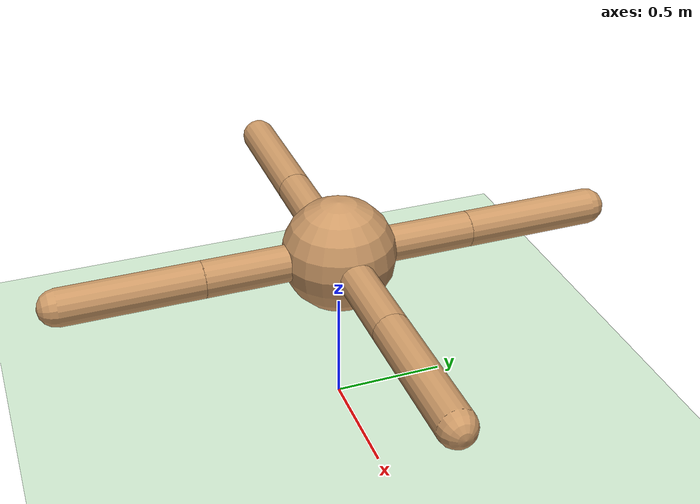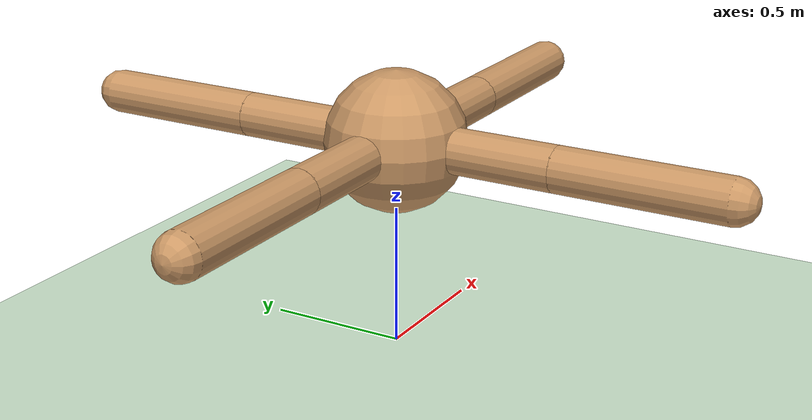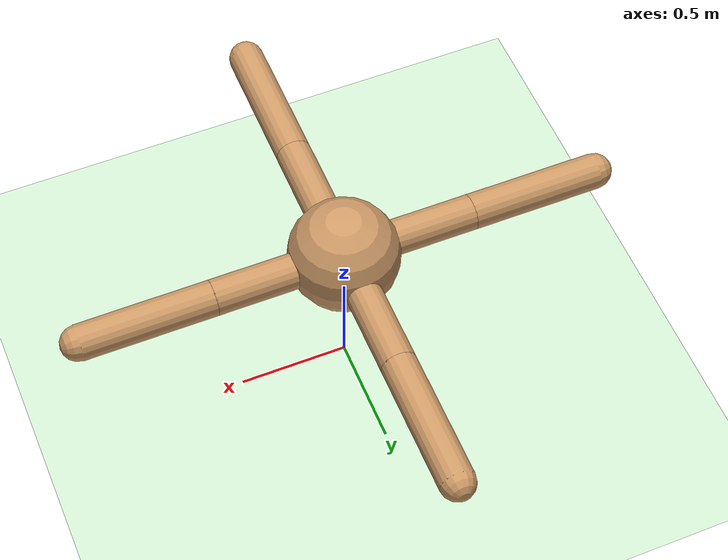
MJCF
<?xml version="1.0" encoding="utf-8"?>
<mujoco model="ant">
	<compiler angle="degree" coordinate="local" inertiafromgeom="true"/>
	<option integrator="RK4" timestep="0.01"/>
	<custom>
		<numeric name="init_qpos" data="0.0 0.0 0.55 1.0 0.0 0.0 0.0 0.0 1.0 0.0 -1.0 0.0 -1.0 0.0 1.0"/>
	</custom>
	<default>
		<joint armature="1" damping="1" limited="true"/>
		<geom conaffinity="0" condim="3" density="5.0" friction="1 0.5 0.5" margin="0.01" rgba="0.8 0.6 0.4 1"/>
	</default>
	<asset>
		<texture builtin="gradient" height="100" rgb1="1 1 1" rgb2="0 0 0" type="skybox" width="100"/>
		<texture builtin="flat" height="1278" mark="cross" markrgb="1 1 1" name="texgeom" random="0.01" rgb1="0.8 0.6 0.4" rgb2="0.8 0.6 0.4" type="cube" width="127"/>
		<texture builtin="checker" height="100" name="texplane" rgb1="0 0 0" rgb2="0.8 0.8 0.8" type="2d" width="100"/>
		<material name="MatPlane" reflectance="0.5" shininess="1" specular="1" texrepeat="60 60" texture="texplane"/>
		<material name="geom" texture="texgeom" texuniform="true"/>
	</asset>
	<worldbody>
		<light cutoff="100" diffuse="1 1 1" dir="0 0 -1.3" directional="true" exponent="1" pos="0 0 1.3" specular="0.1 0.1 0.1"/>
		<geom conaffinity="1" condim="3" material="MatPlane" name="floor" pos="0 0 0" rgba="0.8 0.9 0.8 1" size="40 40 40" type="plane"/>
		<body name="torso" pos="0 0 0.75">
			<camera mode="trackcom" name="track" pos="0 -3 0.3" xyaxes="1 0 0 0 0 1"/>
			<geom name="torso_geom" pos="0 0 0" size="0.25" type="sphere"/>
			<joint armature="0" damping="0" limited="false" margin="0.01" name="root" pos="0 0 0" type="free"/>
			<body name="front_right_leg" pos="0 0 0" euler="0 0 0.0">
				<geom fromto="0 0 0 0.2 0 0" name="aux_geom_front_right_leg" size="0.08" type="capsule"/>
				<body name="aux_body_front_right_leg" pos="0.2 0 0">
					<joint axis="0 0 1" name="hip_joint_front_right_leg" pos="0.0 0.0 0.0" range="-30 30" type="hinge"/>
					<geom fromto="0.0 0.0 0.0 0.4 0.0 0.0" name="leg_geom_front_right_leg" size="0.08" type="capsule"/>
					<body name="ankle_body_front_right_leg" pos="0.4 0.0 0">
						<joint axis="0 1 0" name="ankle_joint_front_right_leg" pos="0.0 0.0 0.0" range="30 70" type="hinge"/>
						<geom fromto="0.0 0.0 0.0 0.6 0.0 0.0" name="ankle_geom_front_right_leg" size="0.08" type="capsule"/>
					</body>
				</body>
			</body>
			<body name="front_left_leg" pos="0 0 0" euler="0 0 90">
				<geom fromto="0 0 0 0.2 0 0" name="aux_geom_front_left_leg" size="0.08" type="capsule"/>
				<body name="aux_body_front_left_leg" pos="0.2 0 0">
					<joint axis="0 0 1" name="hip_joint_front_left_leg" pos="0.0 0.0 0.0" range="-30 30" type="hinge"/>
					<geom fromto="0.0 0.0 0.0 0.4 0.0 0.0" name="leg_geom_front_left_leg" size="0.08" type="capsule"/>
					<body name="ankle_body_front_left_leg" pos="0.4 0.0 0">
						<joint axis="0 1 0" name="ankle_joint_front_left_leg" pos="0.0 0.0 0.0" range="30 70" type="hinge"/>
						<geom fromto="0.0 0.0 0.0 0.6 0.0 0.0" name="ankle_geom_front_left_leg" size="0.08" type="capsule"/>
					</body>
				</body>
			</body>
			<body name="back_left_leg" pos="0 0 0" euler="0 0 180">
				<geom fromto="0 0 0 0.2 0 0" name="aux_geom_back_left_leg" size="0.08" type="capsule"/>
				<body name="aux_body_back_left_leg" pos="0.2 0 0">
					<joint axis="0 0 1" name="hip_joint_back_left_leg" pos="0.0 0.0 0.0" range="-30 30" type="hinge"/>
					<geom fromto="0.0 0.0 0.0 0.4 0.0 0.0" name="leg_geom_back_left_leg" size="0.08" type="capsule"/>
					<body name="ankle_body_back_left_leg" pos="0.4 0.0 0">
						<joint axis="0 1 0" name="ankle_joint_back_left_leg" pos="0.0 0.0 0.0" range="30 70" type="hinge"/>
						<geom fromto="0.0 0.0 0.0 0.6 0.0 0.0" name="ankle_geom_back_left_leg" size="0.08" type="capsule"/>
					</body>
				</body>
			</body>
			<body name="back_right_leg" pos="0 0 0" euler="0 0 270">
				<geom fromto="0 0 0 0.2 0 0" name="aux_geom_back_right_leg" size="0.08" type="capsule"/>
				<body name="aux_body_back_right_leg" pos="0.2 0 0">
					<joint axis="0 0 1" name="hip_joint_back_right_leg" pos="0.0 0.0 0.0" range="-30 30" type="hinge"/>
					<geom fromto="0.0 0.0 0.0 0.4 0.0 0.0" name="leg_geom_back_right_leg" size="0.08" type="capsule"/>
					<body name="ankle_body_back_right_leg" pos="0.4 0.0 0">
						<joint axis="0 1 0" name="ankle_joint_back_right_leg" pos="0.0 0.0 0.0" range="30 70" type="hinge"/>
						<geom fromto="0.0 0.0 0.0 0.6 0.0 0.0" name="ankle_geom_back_right_leg" size="0.08" type="capsule"/>
					</body>
				</body>
			</body>
		</body>
	</worldbody>
	<actuator>
		<motor ctrllimited="true" ctrlrange="-1.0 1.0" gear="150" joint="hip_joint_front_right_leg"/>
		<motor ctrllimited="true" ctrlrange="-1.0 1.0" gear="150" joint="ankle_joint_front_right_leg"/>
		<motor ctrllimited="true" ctrlrange="-1.0 1.0" gear="150" joint="hip_joint_front_left_leg"/>
		<motor ctrllimited="true" ctrlrange="-1.0 1.0" gear="150" joint="ankle_joint_front_left_leg"/>
		<motor ctrllimited="true" ctrlrange="-1.0 1.0" gear="150" joint="hip_joint_back_left_leg"/>
		<motor ctrllimited="true" ctrlrange="-1.0 1.0" gear="150" joint="ankle_joint_back_left_leg"/>
		<motor ctrllimited="true" ctrlrange="-1.0 1.0" gear="150" joint="hip_joint_back_right_leg"/>
		<motor ctrllimited="true" ctrlrange="-1.0 1.0" gear="150" joint="ankle_joint_back_right_leg"/>
	</actuator>
</mujoco>
